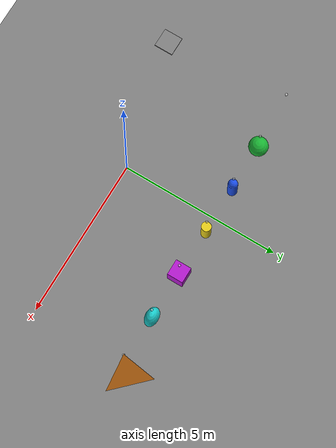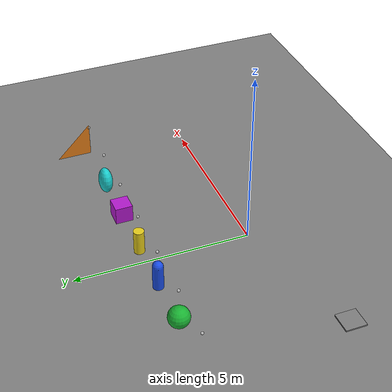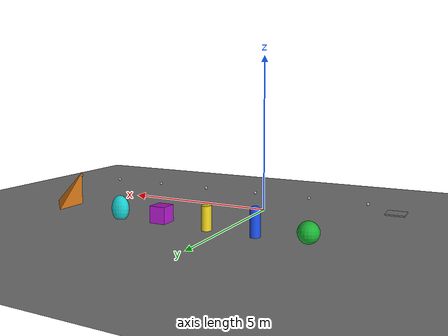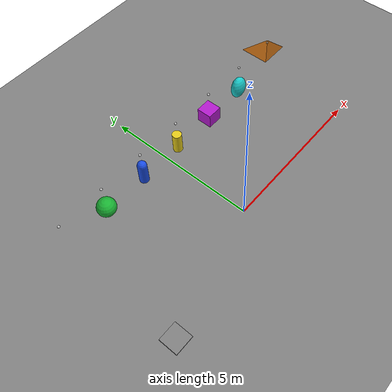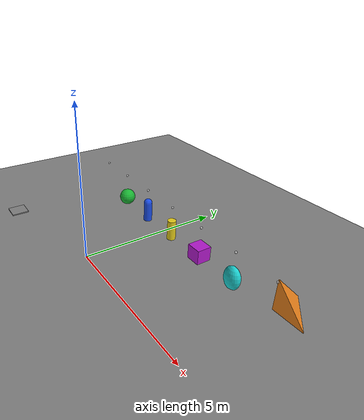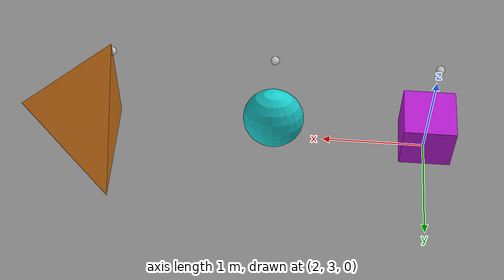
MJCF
<!-- 所有8种geom类型演示 -->
<mujoco model="geom_types">
    <compiler angle="radian"/>
    <option timestep="0.002" gravity="0 0 -9.81"/>

    <visual>
        <global realtime="1"/>
        <quality shadowsize="1024"/>
        <headlight diffuse="1 1 1" specular="0.5 0.5 0.5" active="1"/>
    </visual>

    <asset>
        <texture name="grid" type="2d" builtin="checker" width="512" height="512"
                 rgb1=".2 .2 .2" rgb2=".8 .8 .8" mark="cross" markrgb=".5 .5 .5"/>
        <material name="grid" texture="grid" reflectance="0.2"/>
        <material name="red" rgba=".8 .1 .1 1"/>
        <material name="green" rgba=".1 .7 .2 1"/>
        <material name="blue" rgba=".1 .3 .9 1"/>
        <material name="yellow" rgba=".9 .8 .1 1"/>
        <material name="purple" rgba=".7 .1 .8 1"/>
        <material name="cyan" rgba=".1 .8 .8 1"/>
        <material name="orange" rgba=".9 .5 .1 1"/>
        <mesh name="tetrahedron" vertex="0 0 0 1 0 0 0 1 0 0 0 1"/>
    </asset>

    <worldbody>
        <geom name="floor" type="plane" size="20 20 .01" material="grid" condim="3"/>

        <!-- plane 平面 —— 注意type="plane"的geom永远是静态的 -->
        <body pos="-4 3 .3">
            <geom type="plane" size=".5 .5 .05" material="red"/>
        </body>

        <!-- sphere 球体 -->
        <body pos="-2.5 3 .3">
            <freejoint/>
            <geom type="sphere" size="0.3" material="green"/>
        </body>

        <!-- capsule 胶囊体 -->
        <body pos="-1 3 .3">
            <freejoint/>
            <geom type="capsule" size="0.15 0.4" material="blue"/>
        </body>

        <!-- cylinder 圆柱体 -->
        <body pos="0.5 3 .3">
            <freejoint/>
            <geom type="cylinder" size="0.15 0.4" material="yellow"/>
        </body>

        <!-- box 立方体 -->
        <body pos="2 3 .3">
            <freejoint/>
            <geom type="box" size="0.25 0.25 0.25" material="purple"/>
        </body>

        <!-- ellipsoid 椭球体 (三轴不等) -->
        <body pos="3.5 3 .3">
            <freejoint/>
            <geom type="ellipsoid" size="0.3 0.2 0.4" material="cyan"/>
        </body>

        <!-- mesh 网格（四面体） -->
        <body pos="5 3 .3">
            <freejoint/>
            <geom type="mesh" mesh="tetrahedron" rgba=".9 .5 .1 1"/>
        </body>

        <!-- hfield 高度场 —— 暂用静态box示意位置，真正hfield需要高度图文件 -->
        <body pos="-4 -1 .1">
            <geom type="box" size="0.3 0.3 0.02" rgba=".5 .5 .5 1"/>
        </body>

        <!-- 平面上的标签球用来对比大小 -->
        <body pos="-4 3 1.2">
            <site type="sphere" size="0.04" rgba="1 1 1 0.5"/>
        </body>
        <body pos="-2.5 3 1.2">
            <site type="sphere" size="0.04" rgba="1 1 1 0.5"/>
        </body>
        <body pos="-1 3 1.2">
            <site type="sphere" size="0.04" rgba="1 1 1 0.5"/>
        </body>
        <body pos="0.5 3 1.2">
            <site type="sphere" size="0.04" rgba="1 1 1 0.5"/>
        </body>
        <body pos="2 3 1.2">
            <site type="sphere" size="0.04" rgba="1 1 1 0.5"/>
        </body>
        <body pos="3.5 3 1.2">
            <site type="sphere" size="0.04" rgba="1 1 1 0.5"/>
        </body>
        <body pos="5 3 1.2">
            <site type="sphere" size="0.04" rgba="1 1 1 0.5"/>
        </body>
    </worldbody>
</mujoco>
